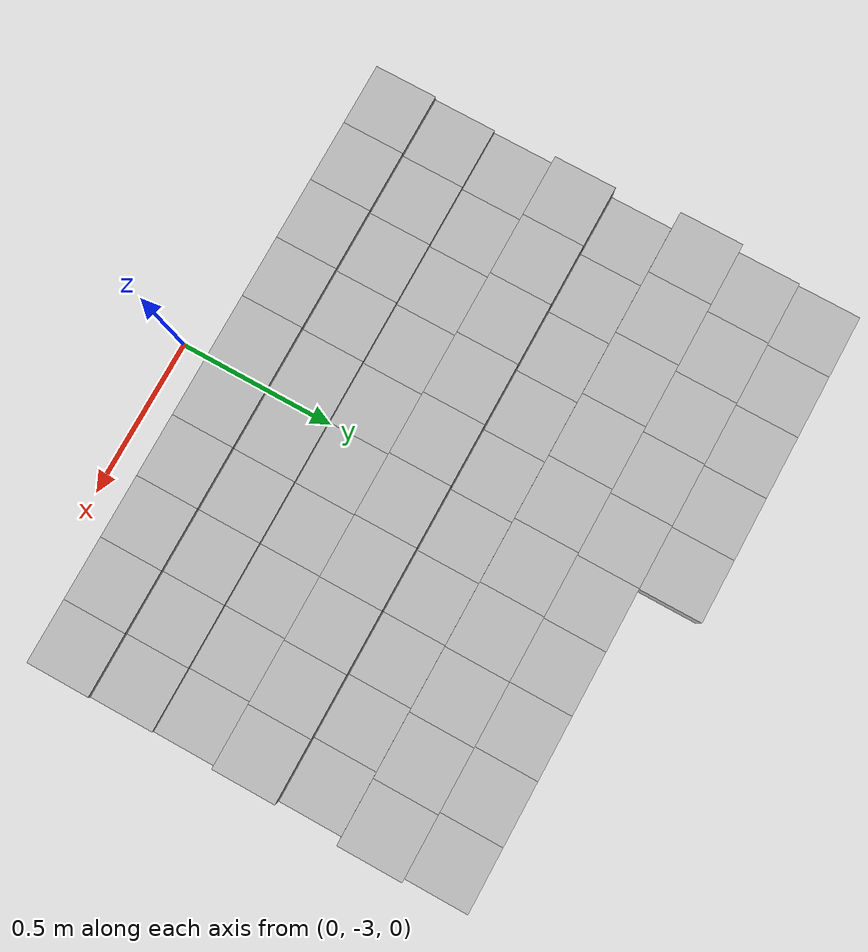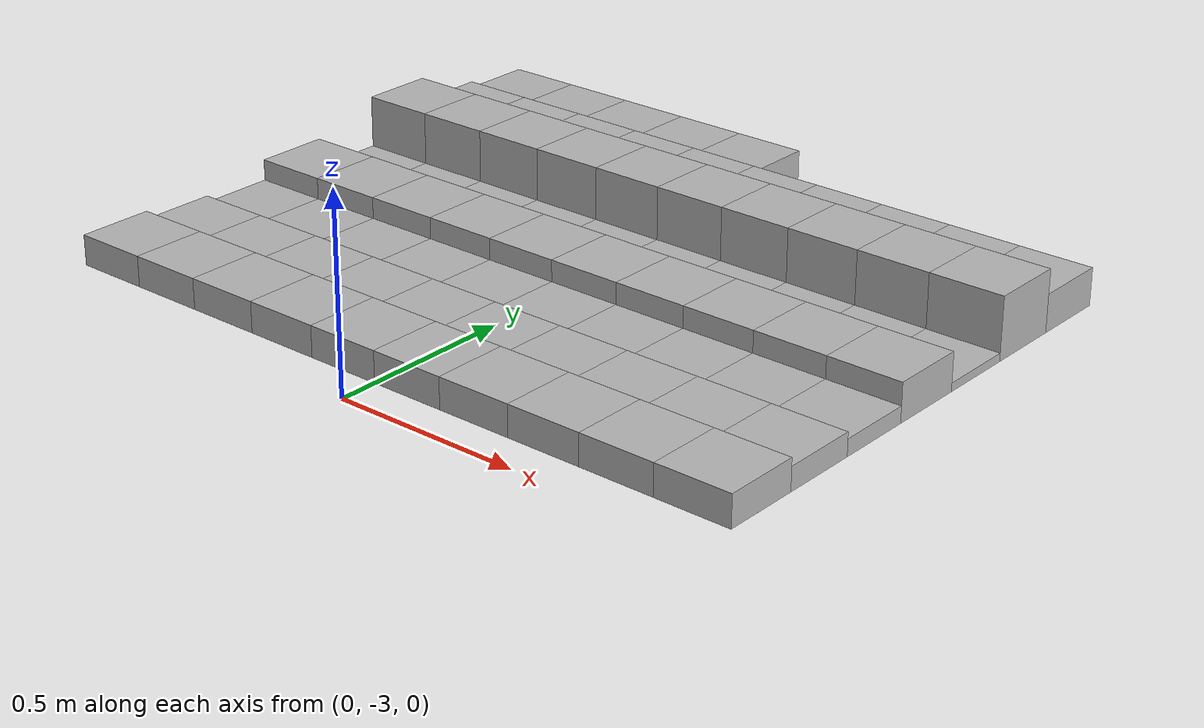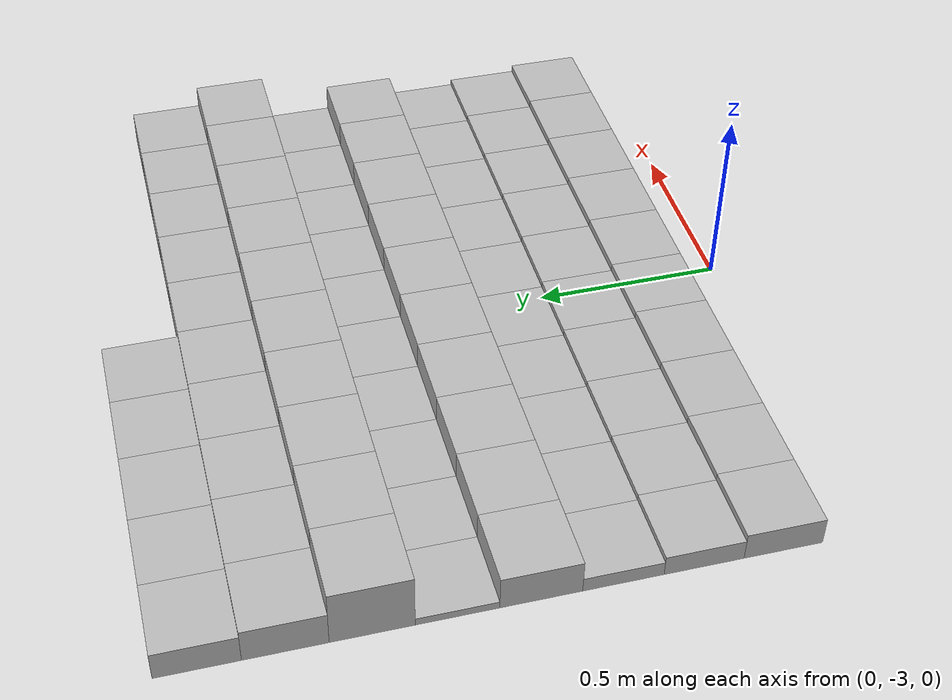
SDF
<sdf version="1.6">
 <model name="Terrain">
  <static>true</static>
  <link name="box_7_0">
   <pose>-0.9 -1.4 0.0414002661977 0 0 0</pose>
   <inertial>
    <mass>1.0</mass>
    <inertia><ixx>0.0</ixx><ixy>0.0</ixy><ixz>0.0</ixz><iyy>0.0</iyy><iyz>0.0</iyz><izz>0.0</izz></inertia>
   </inertial>
   <collision name="collision"><geometry><box><size>0.2 0.2 0.0828005323954</size></box></geometry></collision>
   <visual name="visual"><geometry><box><size>0.2 0.2 0.0828005323954</size></box></geometry></visual>
  </link>
  <link name="box_7_1">
   <pose>-0.7 -1.4 0.0414002661977 0 0 0</pose>
   <inertial>
    <mass>1.0</mass>
    <inertia><ixx>0.0</ixx><ixy>0.0</ixy><ixz>0.0</ixz><iyy>0.0</iyy><iyz>0.0</iyz><izz>0.0</izz></inertia>
   </inertial>
   <collision name="collision"><geometry><box><size>0.2 0.2 0.0828005323954</size></box></geometry></collision>
   <visual name="visual"><geometry><box><size>0.2 0.2 0.0828005323954</size></box></geometry></visual>
  </link>
  <link name="box_7_2">
   <pose>-0.5 -1.4 0.0414002661977 0 0 0</pose>
   <inertial>
    <mass>1.0</mass>
    <inertia><ixx>0.0</ixx><ixy>0.0</ixy><ixz>0.0</ixz><iyy>0.0</iyy><iyz>0.0</iyz><izz>0.0</izz></inertia>
   </inertial>
   <collision name="collision"><geometry><box><size>0.2 0.2 0.0828005323954</size></box></geometry></collision>
   <visual name="visual"><geometry><box><size>0.2 0.2 0.0828005323954</size></box></geometry></visual>
  </link>
  <link name="box_7_3">
   <pose>-0.3 -1.4 0.0414002661977 0 0 0</pose>
   <inertial>
    <mass>1.0</mass>
    <inertia><ixx>0.0</ixx><ixy>0.0</ixy><ixz>0.0</ixz><iyy>0.0</iyy><iyz>0.0</iyz><izz>0.0</izz></inertia>
   </inertial>
   <collision name="collision"><geometry><box><size>0.2 0.2 0.0828005323954</size></box></geometry></collision>
   <visual name="visual"><geometry><box><size>0.2 0.2 0.0828005323954</size></box></geometry></visual>
  </link>
  <link name="box_7_4">
   <pose>-0.1 -1.4 0.0414002661977 0 0 0</pose>
   <inertial>
    <mass>1.0</mass>
    <inertia><ixx>0.0</ixx><ixy>0.0</ixy><ixz>0.0</ixz><iyy>0.0</iyy><iyz>0.0</iyz><izz>0.0</izz></inertia>
   </inertial>
   <collision name="collision"><geometry><box><size>0.2 0.2 0.0828005323954</size></box></geometry></collision>
   <visual name="visual"><geometry><box><size>0.2 0.2 0.0828005323954</size></box></geometry></visual>
  </link>
  <link name="box_8_0">
   <pose>-0.9 -1.6 0.0496136311969 0 0 0</pose>
   <inertial>
    <mass>1.0</mass>
    <inertia><ixx>0.0</ixx><ixy>0.0</ixy><ixz>0.0</ixz><iyy>0.0</iyy><iyz>0.0</iyz><izz>0.0</izz></inertia>
   </inertial>
   <collision name="collision"><geometry><box><size>0.2 0.2 0.0992272623937</size></box></geometry></collision>
   <visual name="visual"><geometry><box><size>0.2 0.2 0.0992272623937</size></box></geometry></visual>
  </link>
  <link name="box_8_1">
   <pose>-0.7 -1.6 0.0496136311969 0 0 0</pose>
   <inertial>
    <mass>1.0</mass>
    <inertia><ixx>0.0</ixx><ixy>0.0</ixy><ixz>0.0</ixz><iyy>0.0</iyy><iyz>0.0</iyz><izz>0.0</izz></inertia>
   </inertial>
   <collision name="collision"><geometry><box><size>0.2 0.2 0.0992272623937</size></box></geometry></collision>
   <visual name="visual"><geometry><box><size>0.2 0.2 0.0992272623937</size></box></geometry></visual>
  </link>
  <link name="box_8_2">
   <pose>-0.5 -1.6 0.0496136311969 0 0 0</pose>
   <inertial>
    <mass>1.0</mass>
    <inertia><ixx>0.0</ixx><ixy>0.0</ixy><ixz>0.0</ixz><iyy>0.0</iyy><iyz>0.0</iyz><izz>0.0</izz></inertia>
   </inertial>
   <collision name="collision"><geometry><box><size>0.2 0.2 0.0992272623937</size></box></geometry></collision>
   <visual name="visual"><geometry><box><size>0.2 0.2 0.0992272623937</size></box></geometry></visual>
  </link>
  <link name="box_8_3">
   <pose>-0.3 -1.6 0.0496136311969 0 0 0</pose>
   <inertial>
    <mass>1.0</mass>
    <inertia><ixx>0.0</ixx><ixy>0.0</ixy><ixz>0.0</ixz><iyy>0.0</iyy><iyz>0.0</iyz><izz>0.0</izz></inertia>
   </inertial>
   <collision name="collision"><geometry><box><size>0.2 0.2 0.0992272623937</size></box></geometry></collision>
   <visual name="visual"><geometry><box><size>0.2 0.2 0.0992272623937</size></box></geometry></visual>
  </link>
  <link name="box_8_4">
   <pose>-0.1 -1.6 0.0496136311969 0 0 0</pose>
   <inertial>
    <mass>1.0</mass>
    <inertia><ixx>0.0</ixx><ixy>0.0</ixy><ixz>0.0</ixz><iyy>0.0</iyy><iyz>0.0</iyz><izz>0.0</izz></inertia>
   </inertial>
   <collision name="collision"><geometry><box><size>0.2 0.2 0.0992272623937</size></box></geometry></collision>
   <visual name="visual"><geometry><box><size>0.2 0.2 0.0992272623937</size></box></geometry></visual>
  </link>
  <link name="box_8_5">
   <pose>0.1 -1.6 0.0496136311969 0 0 0</pose>
   <inertial>
    <mass>1.0</mass>
    <inertia><ixx>0.0</ixx><ixy>0.0</ixy><ixz>0.0</ixz><iyy>0.0</iyy><iyz>0.0</iyz><izz>0.0</izz></inertia>
   </inertial>
   <collision name="collision"><geometry><box><size>0.2 0.2 0.0992272623937</size></box></geometry></collision>
   <visual name="visual"><geometry><box><size>0.2 0.2 0.0992272623937</size></box></geometry></visual>
  </link>
  <link name="box_8_6">
   <pose>0.3 -1.6 0.0496136311969 0 0 0</pose>
   <inertial>
    <mass>1.0</mass>
    <inertia><ixx>0.0</ixx><ixy>0.0</ixy><ixz>0.0</ixz><iyy>0.0</iyy><iyz>0.0</iyz><izz>0.0</izz></inertia>
   </inertial>
   <collision name="collision"><geometry><box><size>0.2 0.2 0.0992272623937</size></box></geometry></collision>
   <visual name="visual"><geometry><box><size>0.2 0.2 0.0992272623937</size></box></geometry></visual>
  </link>
  <link name="box_8_7">
   <pose>0.5 -1.6 0.0496136311969 0 0 0</pose>
   <inertial>
    <mass>1.0</mass>
    <inertia><ixx>0.0</ixx><ixy>0.0</ixy><ixz>0.0</ixz><iyy>0.0</iyy><iyz>0.0</iyz><izz>0.0</izz></inertia>
   </inertial>
   <collision name="collision"><geometry><box><size>0.2 0.2 0.0992272623937</size></box></geometry></collision>
   <visual name="visual"><geometry><box><size>0.2 0.2 0.0992272623937</size></box></geometry></visual>
  </link>
  <link name="box_8_8">
   <pose>0.7 -1.6 0.0496136311969 0 0 0</pose>
   <inertial>
    <mass>1.0</mass>
    <inertia><ixx>0.0</ixx><ixy>0.0</ixy><ixz>0.0</ixz><iyy>0.0</iyy><iyz>0.0</iyz><izz>0.0</izz></inertia>
   </inertial>
   <collision name="collision"><geometry><box><size>0.2 0.2 0.0992272623937</size></box></geometry></collision>
   <visual name="visual"><geometry><box><size>0.2 0.2 0.0992272623937</size></box></geometry></visual>
  </link>
  <link name="box_8_9">
   <pose>0.9 -1.6 0.0496136311969 0 0 0</pose>
   <inertial>
    <mass>1.0</mass>
    <inertia><ixx>0.0</ixx><ixy>0.0</ixy><ixz>0.0</ixz><iyy>0.0</iyy><iyz>0.0</iyz><izz>0.0</izz></inertia>
   </inertial>
   <collision name="collision"><geometry><box><size>0.2 0.2 0.0992272623937</size></box></geometry></collision>
   <visual name="visual"><geometry><box><size>0.2 0.2 0.0992272623937</size></box></geometry></visual>
  </link>
  <link name="box_9_0">
   <pose>-0.9 -1.8 0.0818920255873 0 0 0</pose>
   <inertial>
    <mass>1.0</mass>
    <inertia><ixx>0.0</ixx><ixy>0.0</ixy><ixz>0.0</ixz><iyy>0.0</iyy><iyz>0.0</iyz><izz>0.0</izz></inertia>
   </inertial>
   <collision name="collision"><geometry><box><size>0.2 0.2 0.163784051175</size></box></geometry></collision>
   <visual name="visual"><geometry><box><size>0.2 0.2 0.163784051175</size></box></geometry></visual>
  </link>
  <link name="box_9_1">
   <pose>-0.7 -1.8 0.0818920255873 0 0 0</pose>
   <inertial>
    <mass>1.0</mass>
    <inertia><ixx>0.0</ixx><ixy>0.0</ixy><ixz>0.0</ixz><iyy>0.0</iyy><iyz>0.0</iyz><izz>0.0</izz></inertia>
   </inertial>
   <collision name="collision"><geometry><box><size>0.2 0.2 0.163784051175</size></box></geometry></collision>
   <visual name="visual"><geometry><box><size>0.2 0.2 0.163784051175</size></box></geometry></visual>
  </link>
  <link name="box_9_2">
   <pose>-0.5 -1.8 0.0818920255873 0 0 0</pose>
   <inertial>
    <mass>1.0</mass>
    <inertia><ixx>0.0</ixx><ixy>0.0</ixy><ixz>0.0</ixz><iyy>0.0</iyy><iyz>0.0</iyz><izz>0.0</izz></inertia>
   </inertial>
   <collision name="collision"><geometry><box><size>0.2 0.2 0.163784051175</size></box></geometry></collision>
   <visual name="visual"><geometry><box><size>0.2 0.2 0.163784051175</size></box></geometry></visual>
  </link>
  <link name="box_9_3">
   <pose>-0.3 -1.8 0.0818920255873 0 0 0</pose>
   <inertial>
    <mass>1.0</mass>
    <inertia><ixx>0.0</ixx><ixy>0.0</ixy><ixz>0.0</ixz><iyy>0.0</iyy><iyz>0.0</iyz><izz>0.0</izz></inertia>
   </inertial>
   <collision name="collision"><geometry><box><size>0.2 0.2 0.163784051175</size></box></geometry></collision>
   <visual name="visual"><geometry><box><size>0.2 0.2 0.163784051175</size></box></geometry></visual>
  </link>
  <link name="box_9_4">
   <pose>-0.1 -1.8 0.0818920255873 0 0 0</pose>
   <inertial>
    <mass>1.0</mass>
    <inertia><ixx>0.0</ixx><ixy>0.0</ixy><ixz>0.0</ixz><iyy>0.0</iyy><iyz>0.0</iyz><izz>0.0</izz></inertia>
   </inertial>
   <collision name="collision"><geometry><box><size>0.2 0.2 0.163784051175</size></box></geometry></collision>
   <visual name="visual"><geometry><box><size>0.2 0.2 0.163784051175</size></box></geometry></visual>
  </link>
  <link name="box_9_5">
   <pose>0.1 -1.8 0.0818920255873 0 0 0</pose>
   <inertial>
    <mass>1.0</mass>
    <inertia><ixx>0.0</ixx><ixy>0.0</ixy><ixz>0.0</ixz><iyy>0.0</iyy><iyz>0.0</iyz><izz>0.0</izz></inertia>
   </inertial>
   <collision name="collision"><geometry><box><size>0.2 0.2 0.163784051175</size></box></geometry></collision>
   <visual name="visual"><geometry><box><size>0.2 0.2 0.163784051175</size></box></geometry></visual>
  </link>
  <link name="box_9_6">
   <pose>0.3 -1.8 0.0818920255873 0 0 0</pose>
   <inertial>
    <mass>1.0</mass>
    <inertia><ixx>0.0</ixx><ixy>0.0</ixy><ixz>0.0</ixz><iyy>0.0</iyy><iyz>0.0</iyz><izz>0.0</izz></inertia>
   </inertial>
   <collision name="collision"><geometry><box><size>0.2 0.2 0.163784051175</size></box></geometry></collision>
   <visual name="visual"><geometry><box><size>0.2 0.2 0.163784051175</size></box></geometry></visual>
  </link>
  <link name="box_9_7">
   <pose>0.5 -1.8 0.0818920255873 0 0 0</pose>
   <inertial>
    <mass>1.0</mass>
    <inertia><ixx>0.0</ixx><ixy>0.0</ixy><ixz>0.0</ixz><iyy>0.0</iyy><iyz>0.0</iyz><izz>0.0</izz></inertia>
   </inertial>
   <collision name="collision"><geometry><box><size>0.2 0.2 0.163784051175</size></box></geometry></collision>
   <visual name="visual"><geometry><box><size>0.2 0.2 0.163784051175</size></box></geometry></visual>
  </link>
  <link name="box_9_8">
   <pose>0.7 -1.8 0.0818920255873 0 0 0</pose>
   <inertial>
    <mass>1.0</mass>
    <inertia><ixx>0.0</ixx><ixy>0.0</ixy><ixz>0.0</ixz><iyy>0.0</iyy><iyz>0.0</iyz><izz>0.0</izz></inertia>
   </inertial>
   <collision name="collision"><geometry><box><size>0.2 0.2 0.163784051175</size></box></geometry></collision>
   <visual name="visual"><geometry><box><size>0.2 0.2 0.163784051175</size></box></geometry></visual>
  </link>
  <link name="box_9_9">
   <pose>0.9 -1.8 0.0818920255873 0 0 0</pose>
   <inertial>
    <mass>1.0</mass>
    <inertia><ixx>0.0</ixx><ixy>0.0</ixy><ixz>0.0</ixz><iyy>0.0</iyy><iyz>0.0</iyz><izz>0.0</izz></inertia>
   </inertial>
   <collision name="collision"><geometry><box><size>0.2 0.2 0.163784051175</size></box></geometry></collision>
   <visual name="visual"><geometry><box><size>0.2 0.2 0.163784051175</size></box></geometry></visual>
  </link>
  <link name="box_10_0">
   <pose>-0.9 -2.0 0.0107892438803 0 0 0</pose>
   <inertial>
    <mass>1.0</mass>
    <inertia><ixx>0.0</ixx><ixy>0.0</ixy><ixz>0.0</ixz><iyy>0.0</iyy><iyz>0.0</iyz><izz>0.0</izz></inertia>
   </inertial>
   <collision name="collision"><geometry><box><size>0.2 0.2 0.0215784877605</size></box></geometry></collision>
   <visual name="visual"><geometry><box><size>0.2 0.2 0.0215784877605</size></box></geometry></visual>
  </link>
  <link name="box_10_1">
   <pose>-0.7 -2.0 0.0107892438803 0 0 0</pose>
   <inertial>
    <mass>1.0</mass>
    <inertia><ixx>0.0</ixx><ixy>0.0</ixy><ixz>0.0</ixz><iyy>0.0</iyy><iyz>0.0</iyz><izz>0.0</izz></inertia>
   </inertial>
   <collision name="collision"><geometry><box><size>0.2 0.2 0.0215784877605</size></box></geometry></collision>
   <visual name="visual"><geometry><box><size>0.2 0.2 0.0215784877605</size></box></geometry></visual>
  </link>
  <link name="box_10_2">
   <pose>-0.5 -2.0 0.0107892438803 0 0 0</pose>
   <inertial>
    <mass>1.0</mass>
    <inertia><ixx>0.0</ixx><ixy>0.0</ixy><ixz>0.0</ixz><iyy>0.0</iyy><iyz>0.0</iyz><izz>0.0</izz></inertia>
   </inertial>
   <collision name="collision"><geometry><box><size>0.2 0.2 0.0215784877605</size></box></geometry></collision>
   <visual name="visual"><geometry><box><size>0.2 0.2 0.0215784877605</size></box></geometry></visual>
  </link>
  <link name="box_10_3">
   <pose>-0.3 -2.0 0.0107892438803 0 0 0</pose>
   <inertial>
    <mass>1.0</mass>
    <inertia><ixx>0.0</ixx><ixy>0.0</ixy><ixz>0.0</ixz><iyy>0.0</iyy><iyz>0.0</iyz><izz>0.0</izz></inertia>
   </inertial>
   <collision name="collision"><geometry><box><size>0.2 0.2 0.0215784877605</size></box></geometry></collision>
   <visual name="visual"><geometry><box><size>0.2 0.2 0.0215784877605</size></box></geometry></visual>
  </link>
  <link name="box_10_4">
   <pose>-0.1 -2.0 0.0107892438803 0 0 0</pose>
   <inertial>
    <mass>1.0</mass>
    <inertia><ixx>0.0</ixx><ixy>0.0</ixy><ixz>0.0</ixz><iyy>0.0</iyy><iyz>0.0</iyz><izz>0.0</izz></inertia>
   </inertial>
   <collision name="collision"><geometry><box><size>0.2 0.2 0.0215784877605</size></box></geometry></collision>
   <visual name="visual"><geometry><box><size>0.2 0.2 0.0215784877605</size></box></geometry></visual>
  </link>
  <link name="box_10_5">
   <pose>0.1 -2.0 0.0107892438803 0 0 0</pose>
   <inertial>
    <mass>1.0</mass>
    <inertia><ixx>0.0</ixx><ixy>0.0</ixy><ixz>0.0</ixz><iyy>0.0</iyy><iyz>0.0</iyz><izz>0.0</izz></inertia>
   </inertial>
   <collision name="collision"><geometry><box><size>0.2 0.2 0.0215784877605</size></box></geometry></collision>
   <visual name="visual"><geometry><box><size>0.2 0.2 0.0215784877605</size></box></geometry></visual>
  </link>
  <link name="box_10_6">
   <pose>0.3 -2.0 0.0107892438803 0 0 0</pose>
   <inertial>
    <mass>1.0</mass>
    <inertia><ixx>0.0</ixx><ixy>0.0</ixy><ixz>0.0</ixz><iyy>0.0</iyy><iyz>0.0</iyz><izz>0.0</izz></inertia>
   </inertial>
   <collision name="collision"><geometry><box><size>0.2 0.2 0.0215784877605</size></box></geometry></collision>
   <visual name="visual"><geometry><box><size>0.2 0.2 0.0215784877605</size></box></geometry></visual>
  </link>
  <link name="box_10_7">
   <pose>0.5 -2.0 0.0107892438803 0 0 0</pose>
   <inertial>
    <mass>1.0</mass>
    <inertia><ixx>0.0</ixx><ixy>0.0</ixy><ixz>0.0</ixz><iyy>0.0</iyy><iyz>0.0</iyz><izz>0.0</izz></inertia>
   </inertial>
   <collision name="collision"><geometry><box><size>0.2 0.2 0.0215784877605</size></box></geometry></collision>
   <visual name="visual"><geometry><box><size>0.2 0.2 0.0215784877605</size></box></geometry></visual>
  </link>
  <link name="box_10_8">
   <pose>0.7 -2.0 0.0107892438803 0 0 0</pose>
   <inertial>
    <mass>1.0</mass>
    <inertia><ixx>0.0</ixx><ixy>0.0</ixy><ixz>0.0</ixz><iyy>0.0</iyy><iyz>0.0</iyz><izz>0.0</izz></inertia>
   </inertial>
   <collision name="collision"><geometry><box><size>0.2 0.2 0.0215784877605</size></box></geometry></collision>
   <visual name="visual"><geometry><box><size>0.2 0.2 0.0215784877605</size></box></geometry></visual>
  </link>
  <link name="box_10_9">
   <pose>0.9 -2.0 0.0107892438803 0 0 0</pose>
   <inertial>
    <mass>1.0</mass>
    <inertia><ixx>0.0</ixx><ixy>0.0</ixy><ixz>0.0</ixz><iyy>0.0</iyy><iyz>0.0</iyz><izz>0.0</izz></inertia>
   </inertial>
   <collision name="collision"><geometry><box><size>0.2 0.2 0.0215784877605</size></box></geometry></collision>
   <visual name="visual"><geometry><box><size>0.2 0.2 0.0215784877605</size></box></geometry></visual>
  </link>
  <link name="box_11_0">
   <pose>-0.9 -2.2 0.0499444274269 0 0 0</pose>
   <inertial>
    <mass>1.0</mass>
    <inertia><ixx>0.0</ixx><ixy>0.0</ixy><ixz>0.0</ixz><iyy>0.0</iyy><iyz>0.0</iyz><izz>0.0</izz></inertia>
   </inertial>
   <collision name="collision"><geometry><box><size>0.2 0.2 0.0998888548538</size></box></geometry></collision>
   <visual name="visual"><geometry><box><size>0.2 0.2 0.0998888548538</size></box></geometry></visual>
  </link>
  <link name="box_11_1">
   <pose>-0.7 -2.2 0.0499444274269 0 0 0</pose>
   <inertial>
    <mass>1.0</mass>
    <inertia><ixx>0.0</ixx><ixy>0.0</ixy><ixz>0.0</ixz><iyy>0.0</iyy><iyz>0.0</iyz><izz>0.0</izz></inertia>
   </inertial>
   <collision name="collision"><geometry><box><size>0.2 0.2 0.0998888548538</size></box></geometry></collision>
   <visual name="visual"><geometry><box><size>0.2 0.2 0.0998888548538</size></box></geometry></visual>
  </link>
  <link name="box_11_2">
   <pose>-0.5 -2.2 0.0499444274269 0 0 0</pose>
   <inertial>
    <mass>1.0</mass>
    <inertia><ixx>0.0</ixx><ixy>0.0</ixy><ixz>0.0</ixz><iyy>0.0</iyy><iyz>0.0</iyz><izz>0.0</izz></inertia>
   </inertial>
   <collision name="collision"><geometry><box><size>0.2 0.2 0.0998888548538</size></box></geometry></collision>
   <visual name="visual"><geometry><box><size>0.2 0.2 0.0998888548538</size></box></geometry></visual>
  </link>
  <link name="box_11_3">
   <pose>-0.3 -2.2 0.0499444274269 0 0 0</pose>
   <inertial>
    <mass>1.0</mass>
    <inertia><ixx>0.0</ixx><ixy>0.0</ixy><ixz>0.0</ixz><iyy>0.0</iyy><iyz>0.0</iyz><izz>0.0</izz></inertia>
   </inertial>
   <collision name="collision"><geometry><box><size>0.2 0.2 0.0998888548538</size></box></geometry></collision>
   <visual name="visual"><geometry><box><size>0.2 0.2 0.0998888548538</size></box></geometry></visual>
  </link>
  <link name="box_11_4">
   <pose>-0.1 -2.2 0.0499444274269 0 0 0</pose>
   <inertial>
    <mass>1.0</mass>
    <inertia><ixx>0.0</ixx><ixy>0.0</ixy><ixz>0.0</ixz><iyy>0.0</iyy><iyz>0.0</iyz><izz>0.0</izz></inertia>
   </inertial>
   <collision name="collision"><geometry><box><size>0.2 0.2 0.0998888548538</size></box></geometry></collision>
   <visual name="visual"><geometry><box><size>0.2 0.2 0.0998888548538</size></box></geometry></visual>
  </link>
  <link name="box_11_5">
   <pose>0.1 -2.2 0.0499444274269 0 0 0</pose>
   <inertial>
    <mass>1.0</mass>
    <inertia><ixx>0.0</ixx><ixy>0.0</ixy><ixz>0.0</ixz><iyy>0.0</iyy><iyz>0.0</iyz><izz>0.0</izz></inertia>
   </inertial>
   <collision name="collision"><geometry><box><size>0.2 0.2 0.0998888548538</size></box></geometry></collision>
   <visual name="visual"><geometry><box><size>0.2 0.2 0.0998888548538</size></box></geometry></visual>
  </link>
  <link name="box_11_6">
   <pose>0.3 -2.2 0.0499444274269 0 0 0</pose>
   <inertial>
    <mass>1.0</mass>
    <inertia><ixx>0.0</ixx><ixy>0.0</ixy><ixz>0.0</ixz><iyy>0.0</iyy><iyz>0.0</iyz><izz>0.0</izz></inertia>
   </inertial>
   <collision name="collision"><geometry><box><size>0.2 0.2 0.0998888548538</size></box></geometry></collision>
   <visual name="visual"><geometry><box><size>0.2 0.2 0.0998888548538</size></box></geometry></visual>
  </link>
  <link name="box_11_7">
   <pose>0.5 -2.2 0.0499444274269 0 0 0</pose>
   <inertial>
    <mass>1.0</mass>
    <inertia><ixx>0.0</ixx><ixy>0.0</ixy><ixz>0.0</ixz><iyy>0.0</iyy><iyz>0.0</iyz><izz>0.0</izz></inertia>
   </inertial>
   <collision name="collision"><geometry><box><size>0.2 0.2 0.0998888548538</size></box></geometry></collision>
   <visual name="visual"><geometry><box><size>0.2 0.2 0.0998888548538</size></box></geometry></visual>
  </link>
  <link name="box_11_8">
   <pose>0.7 -2.2 0.0499444274269 0 0 0</pose>
   <inertial>
    <mass>1.0</mass>
    <inertia><ixx>0.0</ixx><ixy>0.0</ixy><ixz>0.0</ixz><iyy>0.0</iyy><iyz>0.0</iyz><izz>0.0</izz></inertia>
   </inertial>
   <collision name="collision"><geometry><box><size>0.2 0.2 0.0998888548538</size></box></geometry></collision>
   <visual name="visual"><geometry><box><size>0.2 0.2 0.0998888548538</size></box></geometry></visual>
  </link>
  <link name="box_11_9">
   <pose>0.9 -2.2 0.0499444274269 0 0 0</pose>
   <inertial>
    <mass>1.0</mass>
    <inertia><ixx>0.0</ixx><ixy>0.0</ixy><ixz>0.0</ixz><iyy>0.0</iyy><iyz>0.0</iyz><izz>0.0</izz></inertia>
   </inertial>
   <collision name="collision"><geometry><box><size>0.2 0.2 0.0998888548538</size></box></geometry></collision>
   <visual name="visual"><geometry><box><size>0.2 0.2 0.0998888548538</size></box></geometry></visual>
  </link>
  <link name="box_12_0">
   <pose>-0.9 -2.4 0.0214213095416 0 0 0</pose>
   <inertial>
    <mass>1.0</mass>
    <inertia><ixx>0.0</ixx><ixy>0.0</ixy><ixz>0.0</ixz><iyy>0.0</iyy><iyz>0.0</iyz><izz>0.0</izz></inertia>
   </inertial>
   <collision name="collision"><geometry><box><size>0.2 0.2 0.0428426190832</size></box></geometry></collision>
   <visual name="visual"><geometry><box><size>0.2 0.2 0.0428426190832</size></box></geometry></visual>
  </link>
  <link name="box_12_1">
   <pose>-0.7 -2.4 0.0214213095416 0 0 0</pose>
   <inertial>
    <mass>1.0</mass>
    <inertia><ixx>0.0</ixx><ixy>0.0</ixy><ixz>0.0</ixz><iyy>0.0</iyy><iyz>0.0</iyz><izz>0.0</izz></inertia>
   </inertial>
   <collision name="collision"><geometry><box><size>0.2 0.2 0.0428426190832</size></box></geometry></collision>
   <visual name="visual"><geometry><box><size>0.2 0.2 0.0428426190832</size></box></geometry></visual>
  </link>
  <link name="box_12_2">
   <pose>-0.5 -2.4 0.0214213095416 0 0 0</pose>
   <inertial>
    <mass>1.0</mass>
    <inertia><ixx>0.0</ixx><ixy>0.0</ixy><ixz>0.0</ixz><iyy>0.0</iyy><iyz>0.0</iyz><izz>0.0</izz></inertia>
   </inertial>
   <collision name="collision"><geometry><box><size>0.2 0.2 0.0428426190832</size></box></geometry></collision>
   <visual name="visual"><geometry><box><size>0.2 0.2 0.0428426190832</size></box></geometry></visual>
  </link>
  <link name="box_12_3">
   <pose>-0.3 -2.4 0.0214213095416 0 0 0</pose>
   <inertial>
    <mass>1.0</mass>
    <inertia><ixx>0.0</ixx><ixy>0.0</ixy><ixz>0.0</ixz><iyy>0.0</iyy><iyz>0.0</iyz><izz>0.0</izz></inertia>
   </inertial>
   <collision name="collision"><geometry><box><size>0.2 0.2 0.0428426190832</size></box></geometry></collision>
   <visual name="visual"><geometry><box><size>0.2 0.2 0.0428426190832</size></box></geometry></visual>
  </link>
  <link name="box_12_4">
   <pose>-0.1 -2.4 0.0214213095416 0 0 0</pose>
   <inertial>
    <mass>1.0</mass>
    <inertia><ixx>0.0</ixx><ixy>0.0</ixy><ixz>0.0</ixz><iyy>0.0</iyy><iyz>0.0</iyz><izz>0.0</izz></inertia>
   </inertial>
   <collision name="collision"><geometry><box><size>0.2 0.2 0.0428426190832</size></box></geometry></collision>
   <visual name="visual"><geometry><box><size>0.2 0.2 0.0428426190832</size></box></geometry></visual>
  </link>
  <link name="box_12_5">
   <pose>0.1 -2.4 0.0214213095416 0 0 0</pose>
   <inertial>
    <mass>1.0</mass>
    <inertia><ixx>0.0</ixx><ixy>0.0</ixy><ixz>0.0</ixz><iyy>0.0</iyy><iyz>0.0</iyz><izz>0.0</izz></inertia>
   </inertial>
   <collision name="collision"><geometry><box><size>0.2 0.2 0.0428426190832</size></box></geometry></collision>
   <visual name="visual"><geometry><box><size>0.2 0.2 0.0428426190832</size></box></geometry></visual>
  </link>
  <link name="box_12_6">
   <pose>0.3 -2.4 0.0214213095416 0 0 0</pose>
   <inertial>
    <mass>1.0</mass>
    <inertia><ixx>0.0</ixx><ixy>0.0</ixy><ixz>0.0</ixz><iyy>0.0</iyy><iyz>0.0</iyz><izz>0.0</izz></inertia>
   </inertial>
   <collision name="collision"><geometry><box><size>0.2 0.2 0.0428426190832</size></box></geometry></collision>
   <visual name="visual"><geometry><box><size>0.2 0.2 0.0428426190832</size></box></geometry></visual>
  </link>
  <link name="box_12_7">
   <pose>0.5 -2.4 0.0214213095416 0 0 0</pose>
   <inertial>
    <mass>1.0</mass>
    <inertia><ixx>0.0</ixx><ixy>0.0</ixy><ixz>0.0</ixz><iyy>0.0</iyy><iyz>0.0</iyz><izz>0.0</izz></inertia>
   </inertial>
   <collision name="collision"><geometry><box><size>0.2 0.2 0.0428426190832</size></box></geometry></collision>
   <visual name="visual"><geometry><box><size>0.2 0.2 0.0428426190832</size></box></geometry></visual>
  </link>
  <link name="box_12_8">
   <pose>0.7 -2.4 0.0214213095416 0 0 0</pose>
   <inertial>
    <mass>1.0</mass>
    <inertia><ixx>0.0</ixx><ixy>0.0</ixy><ixz>0.0</ixz><iyy>0.0</iyy><iyz>0.0</iyz><izz>0.0</izz></inertia>
   </inertial>
   <collision name="collision"><geometry><box><size>0.2 0.2 0.0428426190832</size></box></geometry></collision>
   <visual name="visual"><geometry><box><size>0.2 0.2 0.0428426190832</size></box></geometry></visual>
  </link>
  <link name="box_12_9">
   <pose>0.9 -2.4 0.0214213095416 0 0 0</pose>
   <inertial>
    <mass>1.0</mass>
    <inertia><ixx>0.0</ixx><ixy>0.0</ixy><ixz>0.0</ixz><iyy>0.0</iyy><iyz>0.0</iyz><izz>0.0</izz></inertia>
   </inertial>
   <collision name="collision"><geometry><box><size>0.2 0.2 0.0428426190832</size></box></geometry></collision>
   <visual name="visual"><geometry><box><size>0.2 0.2 0.0428426190832</size></box></geometry></visual>
  </link>
  <link name="box_13_0">
   <pose>-0.9 -2.6 0.030030800709 0 0 0</pose>
   <inertial>
    <mass>1.0</mass>
    <inertia><ixx>0.0</ixx><ixy>0.0</ixy><ixz>0.0</ixz><iyy>0.0</iyy><iyz>0.0</iyz><izz>0.0</izz></inertia>
   </inertial>
   <collision name="collision"><geometry><box><size>0.2 0.2 0.0600616014179</size></box></geometry></collision>
   <visual name="visual"><geometry><box><size>0.2 0.2 0.0600616014179</size></box></geometry></visual>
  </link>
  <link name="box_13_1">
   <pose>-0.7 -2.6 0.030030800709 0 0 0</pose>
   <inertial>
    <mass>1.0</mass>
    <inertia><ixx>0.0</ixx><ixy>0.0</ixy><ixz>0.0</ixz><iyy>0.0</iyy><iyz>0.0</iyz><izz>0.0</izz></inertia>
   </inertial>
   <collision name="collision"><geometry><box><size>0.2 0.2 0.0600616014179</size></box></geometry></collision>
   <visual name="visual"><geometry><box><size>0.2 0.2 0.0600616014179</size></box></geometry></visual>
  </link>
  <link name="box_13_2">
   <pose>-0.5 -2.6 0.030030800709 0 0 0</pose>
   <inertial>
    <mass>1.0</mass>
    <inertia><ixx>0.0</ixx><ixy>0.0</ixy><ixz>0.0</ixz><iyy>0.0</iyy><iyz>0.0</iyz><izz>0.0</izz></inertia>
   </inertial>
   <collision name="collision"><geometry><box><size>0.2 0.2 0.0600616014179</size></box></geometry></collision>
   <visual name="visual"><geometry><box><size>0.2 0.2 0.0600616014179</size></box></geometry></visual>
  </link>
  <link name="box_13_3">
   <pose>-0.3 -2.6 0.030030800709 0 0 0</pose>
   <inertial>
    <mass>1.0</mass>
    <inertia><ixx>0.0</ixx><ixy>0.0</ixy><ixz>0.0</ixz><iyy>0.0</iyy><iyz>0.0</iyz><izz>0.0</izz></inertia>
   </inertial>
   <collision name="collision"><geometry><box><size>0.2 0.2 0.0600616014179</size></box></geometry></collision>
   <visual name="visual"><geometry><box><size>0.2 0.2 0.0600616014179</size></box></geometry></visual>
  </link>
  <link name="box_13_4">
   <pose>-0.1 -2.6 0.030030800709 0 0 0</pose>
   <inertial>
    <mass>1.0</mass>
    <inertia><ixx>0.0</ixx><ixy>0.0</ixy><ixz>0.0</ixz><iyy>0.0</iyy><iyz>0.0</iyz><izz>0.0</izz></inertia>
   </inertial>
   <collision name="collision"><geometry><box><size>0.2 0.2 0.0600616014179</size></box></geometry></collision>
   <visual name="visual"><geometry><box><size>0.2 0.2 0.0600616014179</size></box></geometry></visual>
  </link>
  <link name="box_13_5">
   <pose>0.1 -2.6 0.030030800709 0 0 0</pose>
   <inertial>
    <mass>1.0</mass>
    <inertia><ixx>0.0</ixx><ixy>0.0</ixy><ixz>0.0</ixz><iyy>0.0</iyy><iyz>0.0</iyz><izz>0.0</izz></inertia>
   </inertial>
   <collision name="collision"><geometry><box><size>0.2 0.2 0.0600616014179</size></box></geometry></collision>
   <visual name="visual"><geometry><box><size>0.2 0.2 0.0600616014179</size></box></geometry></visual>
  </link>
  <link name="box_13_6">
   <pose>0.3 -2.6 0.030030800709 0 0 0</pose>
   <inertial>
    <mass>1.0</mass>
    <inertia><ixx>0.0</ixx><ixy>0.0</ixy><ixz>0.0</ixz><iyy>0.0</iyy><iyz>0.0</iyz><izz>0.0</izz></inertia>
   </inertial>
   <collision name="collision"><geometry><box><size>0.2 0.2 0.0600616014179</size></box></geometry></collision>
   <visual name="visual"><geometry><box><size>0.2 0.2 0.0600616014179</size></box></geometry></visual>
  </link>
  <link name="box_13_7">
   <pose>0.5 -2.6 0.030030800709 0 0 0</pose>
   <inertial>
    <mass>1.0</mass>
    <inertia><ixx>0.0</ixx><ixy>0.0</ixy><ixz>0.0</ixz><iyy>0.0</iyy><iyz>0.0</iyz><izz>0.0</izz></inertia>
   </inertial>
   <collision name="collision"><geometry><box><size>0.2 0.2 0.0600616014179</size></box></geometry></collision>
   <visual name="visual"><geometry><box><size>0.2 0.2 0.0600616014179</size></box></geometry></visual>
  </link>
  <link name="box_13_8">
   <pose>0.7 -2.6 0.030030800709 0 0 0</pose>
   <inertial>
    <mass>1.0</mass>
    <inertia><ixx>0.0</ixx><ixy>0.0</ixy><ixz>0.0</ixz><iyy>0.0</iyy><iyz>0.0</iyz><izz>0.0</izz></inertia>
   </inertial>
   <collision name="collision"><geometry><box><size>0.2 0.2 0.0600616014179</size></box></geometry></collision>
   <visual name="visual"><geometry><box><size>0.2 0.2 0.0600616014179</size></box></geometry></visual>
  </link>
  <link name="box_13_9">
   <pose>0.9 -2.6 0.030030800709 0 0 0</pose>
   <inertial>
    <mass>1.0</mass>
    <inertia><ixx>0.0</ixx><ixy>0.0</ixy><ixz>0.0</ixz><iyy>0.0</iyy><iyz>0.0</iyz><izz>0.0</izz></inertia>
   </inertial>
   <collision name="collision"><geometry><box><size>0.2 0.2 0.0600616014179</size></box></geometry></collision>
   <visual name="visual"><geometry><box><size>0.2 0.2 0.0600616014179</size></box></geometry></visual>
  </link>
  <link name="box_14_0">
   <pose>-0.9 -2.8 0.0404536361269 0 0 0</pose>
   <inertial>
    <mass>1.0</mass>
    <inertia><ixx>0.0</ixx><ixy>0.0</ixy><ixz>0.0</ixz><iyy>0.0</iyy><iyz>0.0</iyz><izz>0.0</izz></inertia>
   </inertial>
   <collision name="collision"><geometry><box><size>0.2 0.2 0.0809072722538</size></box></geometry></collision>
   <visual name="visual"><geometry><box><size>0.2 0.2 0.0809072722538</size></box></geometry></visual>
  </link>
  <link name="box_14_1">
   <pose>-0.7 -2.8 0.0404536361269 0 0 0</pose>
   <inertial>
    <mass>1.0</mass>
    <inertia><ixx>0.0</ixx><ixy>0.0</ixy><ixz>0.0</ixz><iyy>0.0</iyy><iyz>0.0</iyz><izz>0.0</izz></inertia>
   </inertial>
   <collision name="collision"><geometry><box><size>0.2 0.2 0.0809072722538</size></box></geometry></collision>
   <visual name="visual"><geometry><box><size>0.2 0.2 0.0809072722538</size></box></geometry></visual>
  </link>
  <link name="box_14_2">
   <pose>-0.5 -2.8 0.0404536361269 0 0 0</pose>
   <inertial>
    <mass>1.0</mass>
    <inertia><ixx>0.0</ixx><ixy>0.0</ixy><ixz>0.0</ixz><iyy>0.0</iyy><iyz>0.0</iyz><izz>0.0</izz></inertia>
   </inertial>
   <collision name="collision"><geometry><box><size>0.2 0.2 0.0809072722538</size></box></geometry></collision>
   <visual name="visual"><geometry><box><size>0.2 0.2 0.0809072722538</size></box></geometry></visual>
  </link>
  <link name="box_14_3">
   <pose>-0.3 -2.8 0.0404536361269 0 0 0</pose>
   <inertial>
    <mass>1.0</mass>
    <inertia><ixx>0.0</ixx><ixy>0.0</ixy><ixz>0.0</ixz><iyy>0.0</iyy><iyz>0.0</iyz><izz>0.0</izz></inertia>
   </inertial>
   <collision name="collision"><geometry><box><size>0.2 0.2 0.0809072722538</size></box></geometry></collision>
   <visual name="visual"><geometry><box><size>0.2 0.2 0.0809072722538</size></box></geometry></visual>
  </link>
  <link name="box_14_4">
   <pose>-0.1 -2.8 0.0404536361269 0 0 0</pose>
   <inertial>
    <mass>1.0</mass>
    <inertia><ixx>0.0</ixx><ixy>0.0</ixy><ixz>0.0</ixz><iyy>0.0</iyy><iyz>0.0</iyz><izz>0.0</izz></inertia>
   </inertial>
   <collision name="collision"><geometry><box><size>0.2 0.2 0.0809072722538</size></box></geometry></collision>
   <visual name="visual"><geometry><box><size>0.2 0.2 0.0809072722538</size></box></geometry></visual>
  </link>
  <link name="box_14_5">
   <pose>0.1 -2.8 0.0404536361269 0 0 0</pose>
   <inertial>
    <mass>1.0</mass>
    <inertia><ixx>0.0</ixx><ixy>0.0</ixy><ixz>0.0</ixz><iyy>0.0</iyy><iyz>0.0</iyz><izz>0.0</izz></inertia>
   </inertial>
   <collision name="collision"><geometry><box><size>0.2 0.2 0.0809072722538</size></box></geometry></collision>
   <visual name="visual"><geometry><box><size>0.2 0.2 0.0809072722538</size></box></geometry></visual>
  </link>
  <link name="box_14_6">
   <pose>0.3 -2.8 0.0404536361269 0 0 0</pose>
   <inertial>
    <mass>1.0</mass>
    <inertia><ixx>0.0</ixx><ixy>0.0</ixy><ixz>0.0</ixz><iyy>0.0</iyy><iyz>0.0</iyz><izz>0.0</izz></inertia>
   </inertial>
   <collision name="collision"><geometry><box><size>0.2 0.2 0.0809072722538</size></box></geometry></collision>
   <visual name="visual"><geometry><box><size>0.2 0.2 0.0809072722538</size></box></geometry></visual>
  </link>
  <link name="box_14_7">
   <pose>0.5 -2.8 0.0404536361269 0 0 0</pose>
   <inertial>
    <mass>1.0</mass>
    <inertia><ixx>0.0</ixx><ixy>0.0</ixy><ixz>0.0</ixz><iyy>0.0</iyy><iyz>0.0</iyz><izz>0.0</izz></inertia>
   </inertial>
   <collision name="collision"><geometry><box><size>0.2 0.2 0.0809072722538</size></box></geometry></collision>
   <visual name="visual"><geometry><box><size>0.2 0.2 0.0809072722538</size></box></geometry></visual>
  </link>
  <link name="box_14_8">
   <pose>0.7 -2.8 0.0404536361269 0 0 0</pose>
   <inertial>
    <mass>1.0</mass>
    <inertia><ixx>0.0</ixx><ixy>0.0</ixy><ixz>0.0</ixz><iyy>0.0</iyy><iyz>0.0</iyz><izz>0.0</izz></inertia>
   </inertial>
   <collision name="collision"><geometry><box><size>0.2 0.2 0.0809072722538</size></box></geometry></collision>
   <visual name="visual"><geometry><box><size>0.2 0.2 0.0809072722538</size></box></geometry></visual>
  </link>
  <link name="box_14_9">
   <pose>0.9 -2.8 0.0404536361269 0 0 0</pose>
   <inertial>
    <mass>1.0</mass>
    <inertia><ixx>0.0</ixx><ixy>0.0</ixy><ixz>0.0</ixz><iyy>0.0</iyy><iyz>0.0</iyz><izz>0.0</izz></inertia>
   </inertial>
   <collision name="collision"><geometry><box><size>0.2 0.2 0.0809072722538</size></box></geometry></collision>
   <visual name="visual"><geometry><box><size>0.2 0.2 0.0809072722538</size></box></geometry></visual>
  </link>
 </model>
</sdf>
